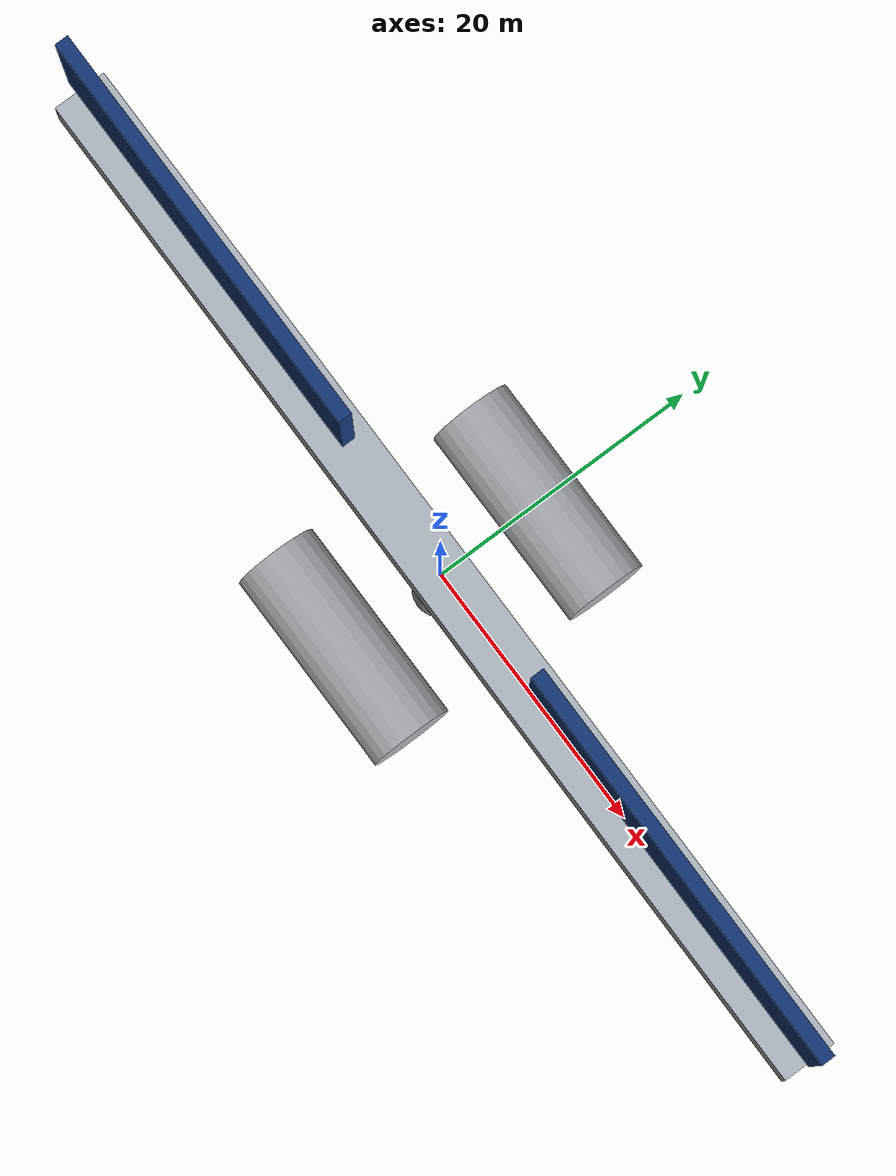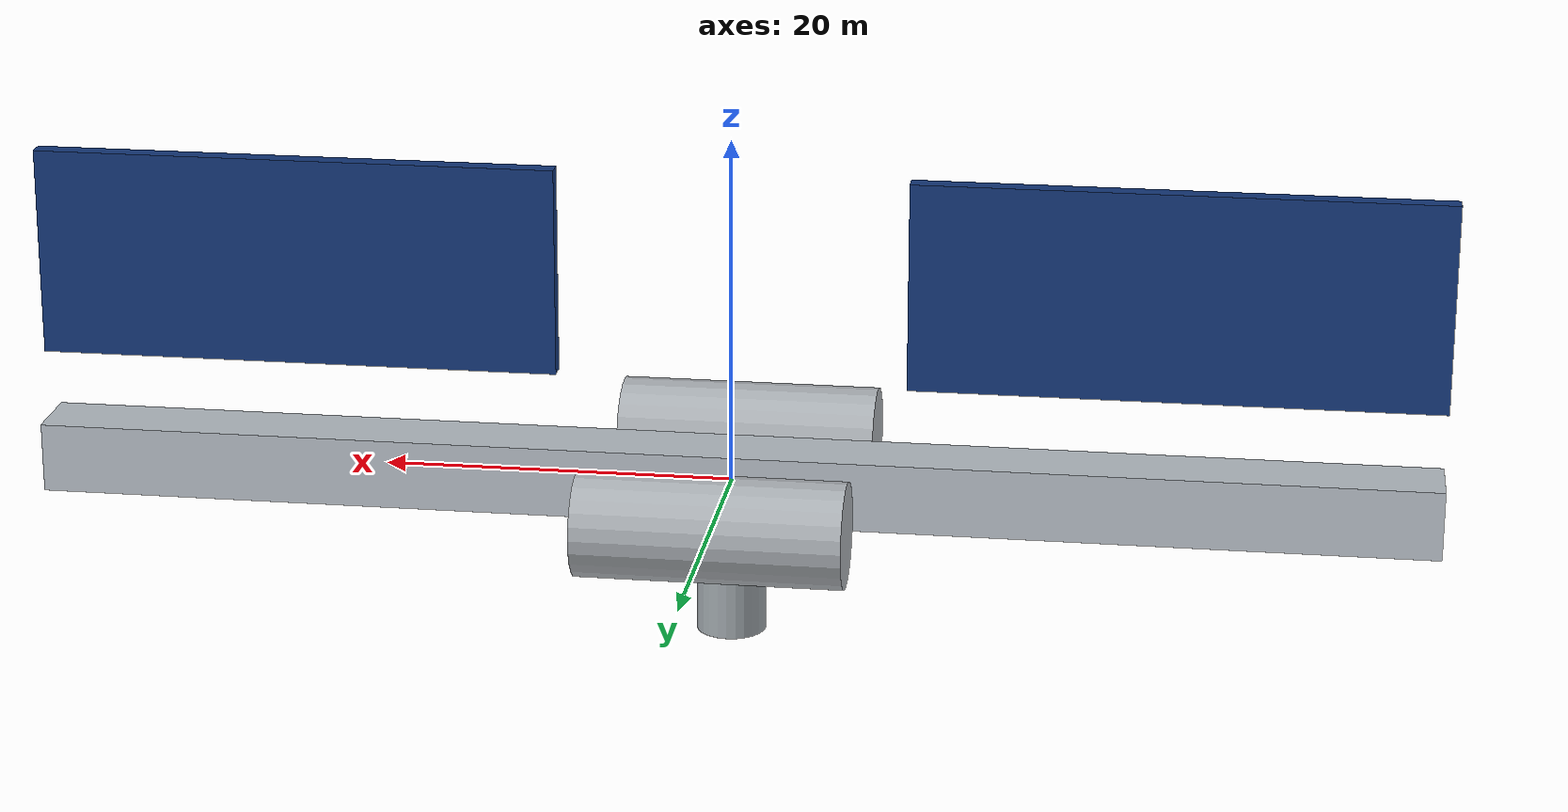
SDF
<?xml version="1.0"?>
<sdf version="1.10">
  <world name="iss_external_empty">
    <physics name="visual_only_physics" type="ode">
      <max_step_size>0.02</max_step_size>
      <real_time_factor>1.0</real_time_factor>
    </physics>
    <plugin name="gz::sim::systems::Physics" filename="gz-sim-physics-system"/>
    <plugin name="gz::sim::systems::UserCommands" filename="gz-sim-user-commands-system"/>
    <plugin name="gz::sim::systems::SceneBroadcaster" filename="gz-sim-scene-broadcaster-system"/>

    <scene>
      <ambient>0.04 0.05 0.07 1</ambient>
      <background>0.01 0.012 0.018 1</background>
      <shadows>false</shadows>
    </scene>

    <light name="sun_key_light" type="directional">
      <pose>0 0 80 0.6 0.2 0.0</pose>
      <cast_shadows>false</cast_shadows>
      <diffuse>1.0 0.96 0.88 1</diffuse>
      <specular>0.5 0.5 0.45 1</specular>
      <direction>-0.6 -0.2 -1.0</direction>
    </light>

    <include>
      <uri>model://iss_proxy</uri>
      <name>iss_proxy</name>
      <pose>0 0 0 0 0 0</pose>
    </include>
  </world>
</sdf>

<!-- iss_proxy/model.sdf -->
<sdf version="1.10">
  <model name="iss_proxy">
    <static>true</static>

    <link name="station_structure">
      <visual name="main_truss_visual">
        <pose>0 0 0 0 0 0</pose>
        <geometry>
          <box>
            <size>80 4 4</size>
          </box>
        </geometry>
        <material>
          <ambient>0.55 0.58 0.60 1</ambient>
          <diffuse>0.72 0.75 0.78 1</diffuse>
          <specular>0.25 0.25 0.25 1</specular>
        </material>
      </visual>

      <visual name="left_solar_array_visual">
        <pose>-25 0 12 0 0 0</pose>
        <geometry>
          <box>
            <size>30 1 12</size>
          </box>
        </geometry>
        <material>
          <ambient>0.03 0.08 0.18 1</ambient>
          <diffuse>0.08 0.22 0.48 1</diffuse>
          <specular>0.18 0.35 0.60 1</specular>
        </material>
      </visual>

      <visual name="right_solar_array_visual">
        <pose>25 0 12 0 0 0</pose>
        <geometry>
          <box>
            <size>30 1 12</size>
          </box>
        </geometry>
        <material>
          <ambient>0.03 0.08 0.18 1</ambient>
          <diffuse>0.08 0.22 0.48 1</diffuse>
          <specular>0.18 0.35 0.60 1</specular>
        </material>
      </visual>

      <visual name="module_1_visual">
        <pose>0 8 0 0 1.57079632679 0</pose>
        <geometry>
          <cylinder>
            <radius>3</radius>
            <length>15</length>
          </cylinder>
        </geometry>
        <material>
          <ambient>0.50 0.52 0.54 1</ambient>
          <diffuse>0.68 0.70 0.72 1</diffuse>
          <specular>0.25 0.25 0.25 1</specular>
        </material>
      </visual>

      <visual name="module_2_visual">
        <pose>0 -8 0 0 1.57079632679 0</pose>
        <geometry>
          <cylinder>
            <radius>3</radius>
            <length>15</length>
          </cylinder>
        </geometry>
        <material>
          <ambient>0.50 0.52 0.54 1</ambient>
          <diffuse>0.68 0.70 0.72 1</diffuse>
          <specular>0.25 0.25 0.25 1</specular>
        </material>
      </visual>

      <visual name="docking_node_visual">
        <pose>0 0 -6 0 0 0</pose>
        <geometry>
          <cylinder>
            <radius>2</radius>
            <length>6</length>
          </cylinder>
        </geometry>
        <material>
          <ambient>0.45 0.47 0.49 1</ambient>
          <diffuse>0.62 0.65 0.67 1</diffuse>
          <specular>0.22 0.22 0.22 1</specular>
        </material>
      </visual>
    </link>
  </model>
</sdf>
